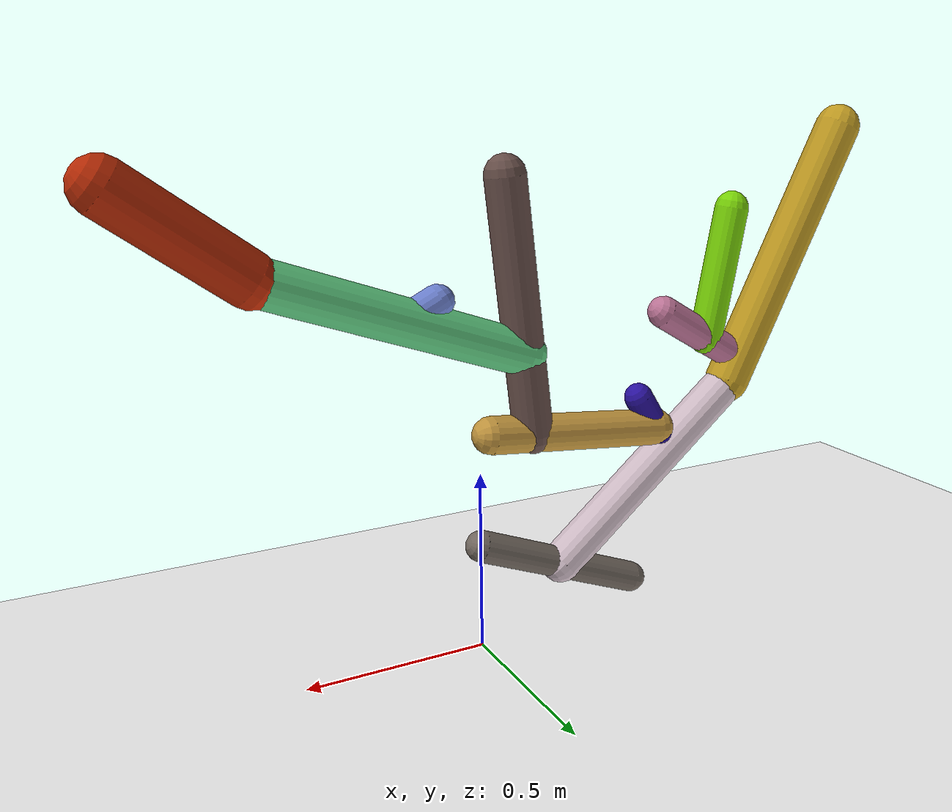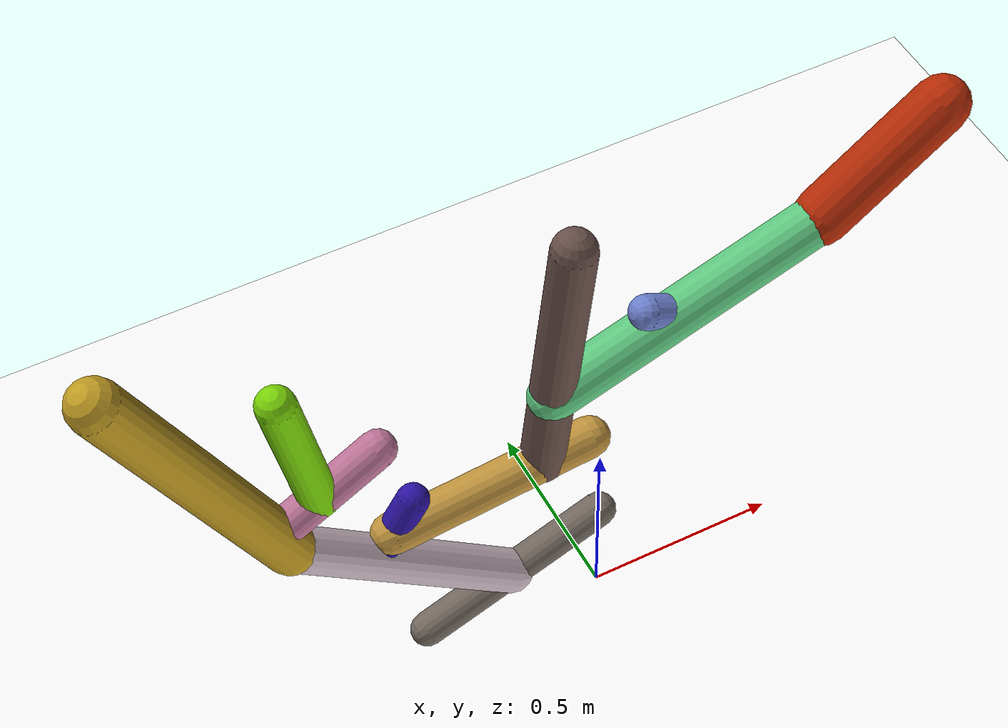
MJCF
<mujoco model="morphology">
  <option timestep="0.01"/>
  <default>
    <default class="/"/>
    <default class="0/"/>
    <default class="0/1/"/>
    <default class="0/1/2/"/>
    <default class="0/1/2/3/"/>
    <default class="0/1/2/3/4/"/>
    <default class="0/1/2/3/4/5/"/>
    <default class="0/1/2/3/4/5/6/"/>
    <default class="0/1/2/3/4/5/7/"/>
    <default class="0/1/8/"/>
    <default class="0/1/8/9/"/>
    <default class="0/1/8/9/10/"/>
  </default>
  <asset>
    <texture name="texplane" type="2d" builtin="checker" rgb1="0.10000000000000001 0.20000000000000001 0.29999999999999999" rgb2="0.20000000000000001 0.29999999999999999 0.40000000000000002" width="300" height="300"/>
    <material name="MatPlane" class="/" texture="texplane" texrepeat="20 20" specular="1" shininess="1" reflectance="0.5"/>
  </asset>
  <worldbody>
    <light name="//unnamed_light_0" class="/" directional="true" pos="0 0 1.5" dir="0 0 -1.3" cutoff="100" exponent="1" diffuse="1 1 1" specular="0.10000000000000001 0.10000000000000001 0.10000000000000001"/>
    <geom name="ground" class="/" type="plane" size="15 15 0.5" material="MatPlane" rgba="1 1 1 1"/>
    <site name="body" class="/" size="9.9999999999999995e-07 9.9999999999999995e-07 9.9999999999999995e-07" pos="0 0 0.29540148973464964"/>
    <body pos="0 0 0.29540148973464964" name="0/">
      <joint name="0/rootx/" class="/" type="slide" axis="1 0 0" limited="false" stiffness="0" armature="0" damping="0"/>
      <joint name="0/rootz/" class="/" type="slide" axis="0 0 1" limited="false" stiffness="0" armature="0" damping="0"/>
      <joint name="0/rooty/" class="/" type="hinge" axis="0 1 0" limited="false" stiffness="0" armature="0" damping="0"/>
      <geom name="0/geom" class="0/" type="capsule" contype="1" conaffinity="1" condim="3" size="0.043599752075604771" rgba="0.45284140716765597 0.41381258093106987 0.37960920048558155 1" friction="0.59999999999999998 0.10000000000000001 0.10000000000000001" fromto="0 0 0 -0.48401065182657543 0 -0.19540149406783791"/>
      <site name="0/end0" class="0/" size="0.0050000000000000001" pos="-0.48401065182657543 0 -0.19540149406783791"/>
      <site name="0/attach1" class="0/" size="9.9999999999999995e-07 9.9999999999999995e-07 9.9999999999999995e-07" pos="-0.24907248428766604 0 -0.10055385222893097"/>
      <body pos="-0.24907248428766604 0 -0.10055385222893097" name="0/1/">
        <joint name="0/1/joint/" class="0/" type="hinge" axis="0 1 0" limited="true" range="-37.985271661857432 37.985271661857432"/>
        <geom name="0/1/geom" class="0/1/" type="capsule" contype="1" conaffinity="1" condim="3" size="0.056681685279172278" rgba="0.81865765320830985 0.74216231777939046 0.78359935982087969 1" friction="0.59999999999999998 0.10000000000000001 0.10000000000000001" fromto="0 0 0 -0.56581034584330658 0 0.46552872278003132"/>
        <site name="0/1/end1" class="0/1/" size="0.0050000000000000001" pos="-0.56581034584330658 0 0.46552872278003132"/>
        <site name="0/1/attach2" class="0/1/" size="9.9999999999999995e-07 9.9999999999999995e-07 9.9999999999999995e-07" pos="-0.35201512526081474 0 0.2896255836709325"/>
        <body pos="-0.35201512526081474 0 0.2896255836709325" name="0/1/2/">
          <joint name="0/1/2/joint/" class="0/1/" type="hinge" axis="0 1 0" limited="true" range="-45.728437193781204 45.728437193781204"/>
          <geom name="0/1/2/geom" class="0/1/2/" type="capsule" contype="1" conaffinity="1" condim="3" size="0.040298406603864807" rgba="0.17582627559313935 0.076150475365972636 0.64654844096086272 1" friction="0.59999999999999998 0.10000000000000001 0.10000000000000001" fromto="0 0 0 0.1022986494789444 0 0.1625795981736784"/>
          <site name="0/1/2/end2" class="0/1/2/" size="0.0050000000000000001" pos="0.1022986494789444 0 0.1625795981736784"/>
          <site name="0/1/2/attach3" class="0/1/2/" size="9.9999999999999995e-07 9.9999999999999995e-07 9.9999999999999995e-07" pos="0.041889065669483617 0 0.066572799339029418"/>
          <body pos="0.041889065669483617 0 0.066572799339029418" name="0/1/2/3/">
            <joint name="0/1/2/3/joint/" class="0/1/2/" type="hinge" axis="0 1 0" limited="true" range="-61.765273815253892 61.765273815253892"/>
            <geom name="0/1/2/3/geom" class="0/1/2/3/" type="capsule" contype="1" conaffinity="1" condim="3" size="0.051991689009645632" rgba="0.76757896756982524 0.59196979993257215 0.24592468819676871 1" friction="0.59999999999999998 0.10000000000000001 0.10000000000000001" fromto="0 0 0 0.52683394244329174 0 0.053000796955370966"/>
            <site name="0/1/2/3/end3" class="0/1/2/3/" size="0.0050000000000000001" pos="0.52683394244329174 0 0.053000796955370966"/>
            <site name="0/1/2/3/attach4" class="0/1/2/3/" size="9.9999999999999995e-07 9.9999999999999995e-07 9.9999999999999995e-07" pos="0.39955367618711174 0 0.040196087530265004"/>
            <body pos="0.39955367618711174 0 0.040196087530265004" name="0/1/2/3/4/">
              <joint name="0/1/2/3/4/joint/" class="0/1/2/3/" type="hinge" axis="0 1 0" limited="true" range="-30.764010895431468 30.764010895431468"/>
              <geom name="0/1/2/3/4/geom" class="0/1/2/3/4/" type="capsule" contype="1" conaffinity="1" condim="3" size="0.055521505812613996" rgba="0.41106474058057785 0.31433156899351189 0.2920492532769321 1" friction="0.59999999999999998 0.10000000000000001 0.10000000000000001" fromto="0 0 0 0.081125121160245284 0 0.68817754765296213"/>
              <site name="0/1/2/3/4/end4" class="0/1/2/3/4/" size="0.0050000000000000001" pos="0.081125121160245284 0 0.68817754765296213"/>
              <site name="0/1/2/3/4/attach5" class="0/1/2/3/4/" size="9.9999999999999995e-07 9.9999999999999995e-07 9.9999999999999995e-07" pos="0.026371225728192466 0 0.22370487945876272"/>
              <body pos="0.026371225728192466 0 0.22370487945876272" name="0/1/2/3/4/5/">
                <joint name="0/1/2/3/4/5/joint/" class="0/1/2/3/4/" type="hinge" axis="0 1 0" limited="true" range="-67.874301279406126 67.874301279406126"/>
                <geom name="0/1/2/3/4/5/geom" class="0/1/2/3/4/5/" type="capsule" contype="1" conaffinity="1" condim="3" size="0.060705393586596317" rgba="0.3750527777237691 0.7965216862336173 0.50869411037673085 1" friction="0.59999999999999998 0.10000000000000001 0.10000000000000001" fromto="0 0 0 0.72787828070320604 0 0.25827492651530282"/>
                <site name="0/1/2/3/4/5/end5" class="0/1/2/3/4/5/" size="0.0050000000000000001" pos="0.72787828070320604 0 0.25827492651530282"/>
                <site name="0/1/2/3/4/5/attach6" class="0/1/2/3/4/5/" size="9.9999999999999995e-07 9.9999999999999995e-07 9.9999999999999995e-07" pos="0.70653690729470264 0 0.25070231197940573"/>
                <body pos="0.70653690729470264 0 0.25070231197940573" name="0/1/2/3/4/5/6/">
                  <geom name="0/1/2/3/4/5/6/geom" class="0/1/2/3/4/5/6/" type="capsule" contype="1" conaffinity="1" condim="3" size="0.06947087925237308" rgba="0.72562304290554747 0.17269508960205215 0.025148697770284723 1" friction="0.59999999999999998 0.10000000000000001 0.10000000000000001" fromto="0 0 0 0.30477710024931914 0 0.22518233952331479"/>
                  <site name="0/1/2/3/4/5/6/end6" class="0/1/2/3/4/5/6/" size="0.0050000000000000001" pos="0.30477710024931914 0 0.22518233952331479"/>
                </body>
                <site name="0/1/2/3/4/5/attach7" class="0/1/2/3/4/5/" size="9.9999999999999995e-07 9.9999999999999995e-07 9.9999999999999995e-07" pos="0.33299278407542521 0 0.11815668789308846"/>
                <body pos="0.33299278407542521 0 0.11815668789308846" name="0/1/2/3/4/5/7/">
                  <geom name="0/1/2/3/4/5/7/geom" class="0/1/2/3/4/5/7/" type="capsule" contype="1" conaffinity="1" condim="3" size="0.043772503547670316" rgba="0.42886948257509427 0.51243667243023561 0.82272106950553991 1" friction="0.59999999999999998 0.10000000000000001 0.10000000000000001" fromto="0 0 0 -0.087478165664139351 0 0.043822908111896264"/>
                  <site name="0/1/2/3/4/5/7/end7" class="0/1/2/3/4/5/7/" size="0.0050000000000000001" pos="-0.087478165664139351 0 0.043822908111896264"/>
                </body>
              </body>
            </body>
          </body>
        </body>
        <site name="0/1/attach8" class="0/1/" size="9.9999999999999995e-07 9.9999999999999995e-07 9.9999999999999995e-07" pos="-0.56086108392827061 0 0.46145664528103025"/>
        <body pos="-0.56086108392827061 0 0.46145664528103025" name="0/1/8/">
          <joint name="0/1/8/joint/" class="0/1/" type="hinge" axis="0 1 0" limited="true" range="-56.792806117955891 56.792806117955891"/>
          <geom name="0/1/8/geom" class="0/1/8/" type="capsule" contype="1" conaffinity="1" condim="3" size="0.063726368446358192" rgba="0.7671994367977113 0.61868138938581618 0.13721778853055167 1" friction="0.59999999999999998 0.10000000000000001 0.10000000000000001" fromto="0 0 0 -0.36710641061513527 0 0.72588585677237294"/>
          <site name="0/1/8/end8" class="0/1/8/" size="0.0050000000000000001" pos="-0.36710641061513527 0 0.72588585677237294"/>
          <site name="0/1/8/attach9" class="0/1/8/" size="9.9999999999999995e-07 9.9999999999999995e-07 9.9999999999999995e-07" pos="-0.03499587068089504 0 0.069197940537542149"/>
          <body pos="-0.03499587068089504 0 0.069197940537542149" name="0/1/8/9/">
            <joint name="0/1/8/9/joint/" class="0/1/8/" type="hinge" axis="0 1 0" limited="true" range="-36.621848926608884 36.621848926608884"/>
            <geom name="0/1/8/9/geom" class="0/1/8/9/" type="capsule" contype="1" conaffinity="1" condim="3" size="0.045720470497365773" rgba="0.75515902789711531 0.4631331897916009 0.60231662752072435 1" friction="0.59999999999999998 0.10000000000000001 0.10000000000000001" fromto="0 0 0 0.26894201408490526 0 0.15881312235392997"/>
            <site name="0/1/8/9/end9" class="0/1/8/9/" size="0.0050000000000000001" pos="0.26894201408490526 0 0.15881312235392997"/>
            <site name="0/1/8/9/attach10" class="0/1/8/9/" size="9.9999999999999995e-07 9.9999999999999995e-07 9.9999999999999995e-07" pos="0.11839090541036408 0 0.069911089981622876"/>
            <body pos="0.11839090541036408 0 0.069911089981622876" name="0/1/8/9/10/">
              <joint name="0/1/8/9/10/joint/" class="0/1/8/9/" type="hinge" axis="0 1 0" limited="true" range="-33.946282555224023 33.946282555224023"/>
              <geom name="0/1/8/9/10/geom" class="0/1/8/9/10/" type="capsule" contype="1" conaffinity="1" condim="3" size="0.047779066300812689" rgba="0.48756227870445767 0.84402059270409802 0.028422828051800186 1" friction="0.59999999999999998 0.10000000000000001 0.10000000000000001" fromto="0 0 0 -0.072709305312949835 0 0.36801990795408823"/>
              <site name="0/1/8/9/10/end10" class="0/1/8/9/10/" size="0.0050000000000000001" pos="-0.072709305312949835 0 0.36801990795408823"/>
            </body>
          </body>
        </body>
      </body>
      <camera name="0/side" class="0/" mode="trackcom" pos="0.40000000000000002 -4 0.20000000000000001" quat="0.70699999999999996 0.70699999999999996 0 0"/>
    </body>
  </worldbody>
  <actuator>
    <motor name="0/1/motor" class="0/1/" ctrllimited="true" ctrlrange="-1 1" gear="67" joint="0/1/joint/"/>
    <motor name="0/1/2/motor" class="0/1/2/" ctrllimited="true" ctrlrange="-1 1" gear="66" joint="0/1/2/joint/"/>
    <motor name="0/1/2/3/motor" class="0/1/2/3/" ctrllimited="true" ctrlrange="-1 1" gear="52" joint="0/1/2/3/joint/"/>
    <motor name="0/1/2/3/4/motor" class="0/1/2/3/4/" ctrllimited="true" ctrlrange="-1 1" gear="58" joint="0/1/2/3/4/joint/"/>
    <motor name="0/1/2/3/4/5/motor" class="0/1/2/3/4/5/" ctrllimited="true" ctrlrange="-1 1" gear="55" joint="0/1/2/3/4/5/joint/"/>
    <motor name="0/1/8/motor" class="0/1/8/" ctrllimited="true" ctrlrange="-1 1" gear="50" joint="0/1/8/joint/"/>
    <motor name="0/1/8/9/motor" class="0/1/8/9/" ctrllimited="true" ctrlrange="-1 1" gear="80" joint="0/1/8/9/joint/"/>
    <motor name="0/1/8/9/10/motor" class="0/1/8/9/10/" ctrllimited="true" ctrlrange="-1 1" gear="50" joint="0/1/8/9/10/joint/"/>
  </actuator>
  <sensor>
    <subtreelinvel name="velocity" body="0/"/>
  </sensor>
</mujoco>
